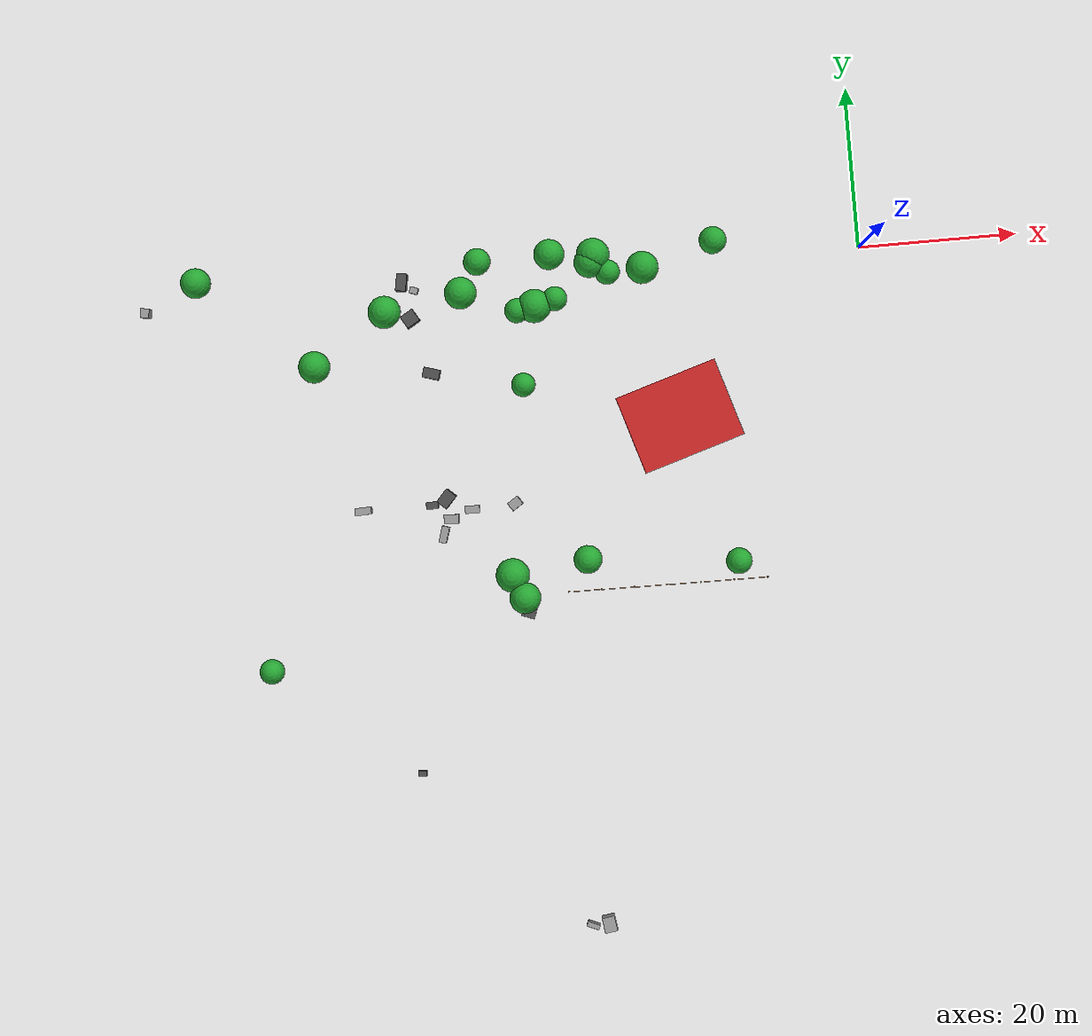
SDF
<sdf version="1.6">
 <world name="outdoor_v2">
  <include><uri>model://sun</uri></include>
  <model name="tree_7">
   <static>true</static>
   <pose>-81.61 0.89 6.46 0 0 2.130</pose>
   <link name="link">
    <collision name="trunk_c">
     <pose>0 0 1.5 0 0 0</pose>
     <geometry><cylinder><radius>0.22</radius><length>3.0</length></cylinder></geometry>
    </collision>
    <visual name="trunk_v">
     <pose>0 0 1.5 0 0 0</pose>
     <geometry><cylinder><radius>0.22</radius><length>3.0</length></cylinder></geometry>
     <material>
      <script><uri>file://media/materials/scripts/gazebo.material</uri><name>Gazebo/Wood</name></script>
     </material>
    </visual>
    <collision name="canopy_c">
     <pose>0 0 4.5 0 0 0</pose>
     <geometry><sphere><radius>1.81</radius></sphere></geometry>
    </collision>
    <visual name="canopy_v">
     <pose>0 0 4.5 0 0 0</pose>
     <geometry><sphere><radius>1.81</radius></sphere></geometry>
     <material>
      <script><uri>file://media/materials/scripts/gazebo.material</uri><name>Gazebo/Green</name></script>
     </material>
    </visual>
   </link>
  </model>
  <model name="tree_22">
   <static>true</static>
   <pose>-43.29 -5.84 8.67 0 0 0.361</pose>
   <link name="link">
    <collision name="trunk_c">
     <pose>0 0 1.5 0 0 0</pose>
     <geometry><cylinder><radius>0.22</radius><length>3.0</length></cylinder></geometry>
    </collision>
    <visual name="trunk_v">
     <pose>0 0 1.5 0 0 0</pose>
     <geometry><cylinder><radius>0.22</radius><length>3.0</length></cylinder></geometry>
     <material>
      <script><uri>file://media/materials/scripts/gazebo.material</uri><name>Gazebo/Wood</name></script>
     </material>
    </visual>
    <collision name="canopy_c">
     <pose>0 0 4.5 0 0 0</pose>
     <geometry><sphere><radius>1.47</radius></sphere></geometry>
    </collision>
    <visual name="canopy_v">
     <pose>0 0 4.5 0 0 0</pose>
     <geometry><sphere><radius>1.47</radius></sphere></geometry>
     <material>
      <script><uri>file://media/materials/scripts/gazebo.material</uri><name>Gazebo/Green</name></script>
     </material>
    </visual>
   </link>
  </model>
  <model name="tree_23">
   <static>true</static>
   <pose>-27.96 -1.86 7.77 0 0 2.671</pose>
   <link name="link">
    <collision name="trunk_c">
     <pose>0 0 1.5 0 0 0</pose>
     <geometry><cylinder><radius>0.22</radius><length>3.0</length></cylinder></geometry>
    </collision>
    <visual name="trunk_v">
     <pose>0 0 1.5 0 0 0</pose>
     <geometry><cylinder><radius>0.22</radius><length>3.0</length></cylinder></geometry>
     <material>
      <script><uri>file://media/materials/scripts/gazebo.material</uri><name>Gazebo/Wood</name></script>
     </material>
    </visual>
    <collision name="canopy_c">
     <pose>0 0 4.5 0 0 0</pose>
     <geometry><sphere><radius>1.95</radius></sphere></geometry>
    </collision>
    <visual name="canopy_v">
     <pose>0 0 4.5 0 0 0</pose>
     <geometry><sphere><radius>1.95</radius></sphere></geometry>
     <material>
      <script><uri>file://media/materials/scripts/gazebo.material</uri><name>Gazebo/Green</name></script>
     </material>
    </visual>
   </link>
  </model>
  <model name="tree_25">
   <static>true</static>
   <pose>-49.75 -3.32 9.65 0 0 5.034</pose>
   <link name="link">
    <collision name="trunk_c">
     <pose>0 0 1.5 0 0 0</pose>
     <geometry><cylinder><radius>0.22</radius><length>3.0</length></cylinder></geometry>
    </collision>
    <visual name="trunk_v">
     <pose>0 0 1.5 0 0 0</pose>
     <geometry><cylinder><radius>0.22</radius><length>3.0</length></cylinder></geometry>
     <material>
      <script><uri>file://media/materials/scripts/gazebo.material</uri><name>Gazebo/Wood</name></script>
     </material>
    </visual>
    <collision name="canopy_c">
     <pose>0 0 4.5 0 0 0</pose>
     <geometry><sphere><radius>1.91</radius></sphere></geometry>
    </collision>
    <visual name="canopy_v">
     <pose>0 0 4.5 0 0 0</pose>
     <geometry><sphere><radius>1.91</radius></sphere></geometry>
     <material>
      <script><uri>file://media/materials/scripts/gazebo.material</uri><name>Gazebo/Green</name></script>
     </material>
    </visual>
   </link>
  </model>
  <model name="tree_26">
   <static>true</static>
   <pose>-38.67 -4.79 8.54 0 0 5.377</pose>
   <link name="link">
    <collision name="trunk_c">
     <pose>0 0 1.5 0 0 0</pose>
     <geometry><cylinder><radius>0.22</radius><length>3.0</length></cylinder></geometry>
    </collision>
    <visual name="trunk_v">
     <pose>0 0 1.5 0 0 0</pose>
     <geometry><cylinder><radius>0.22</radius><length>3.0</length></cylinder></geometry>
     <material>
      <script><uri>file://media/materials/scripts/gazebo.material</uri><name>Gazebo/Wood</name></script>
     </material>
    </visual>
    <collision name="canopy_c">
     <pose>0 0 4.5 0 0 0</pose>
     <geometry><sphere><radius>1.47</radius></sphere></geometry>
    </collision>
    <visual name="canopy_v">
     <pose>0 0 4.5 0 0 0</pose>
     <geometry><sphere><radius>1.47</radius></sphere></geometry>
     <material>
      <script><uri>file://media/materials/scripts/gazebo.material</uri><name>Gazebo/Green</name></script>
     </material>
    </visual>
   </link>
  </model>
  <model name="tree_29">
   <static>true</static>
   <pose>-34.23 -0.82 8.59 0 0 5.819</pose>
   <link name="link">
    <collision name="trunk_c">
     <pose>0 0 1.5 0 0 0</pose>
     <geometry><cylinder><radius>0.22</radius><length>3.0</length></cylinder></geometry>
    </collision>
    <visual name="trunk_v">
     <pose>0 0 1.5 0 0 0</pose>
     <geometry><cylinder><radius>0.22</radius><length>3.0</length></cylinder></geometry>
     <material>
      <script><uri>file://media/materials/scripts/gazebo.material</uri><name>Gazebo/Wood</name></script>
     </material>
    </visual>
    <collision name="canopy_c">
     <pose>0 0 4.5 0 0 0</pose>
     <geometry><sphere><radius>1.84</radius></sphere></geometry>
    </collision>
    <visual name="canopy_v">
     <pose>0 0 4.5 0 0 0</pose>
     <geometry><sphere><radius>1.84</radius></sphere></geometry>
     <material>
      <script><uri>file://media/materials/scripts/gazebo.material</uri><name>Gazebo/Green</name></script>
     </material>
    </visual>
   </link>
  </model>
  <model name="tree_31">
   <static>true</static>
   <pose>-38.92 0.39 9.44 0 0 1.497</pose>
   <link name="link">
    <collision name="trunk_c">
     <pose>0 0 1.5 0 0 0</pose>
     <geometry><cylinder><radius>0.22</radius><length>3.0</length></cylinder></geometry>
    </collision>
    <visual name="trunk_v">
     <pose>0 0 1.5 0 0 0</pose>
     <geometry><cylinder><radius>0.22</radius><length>3.0</length></cylinder></geometry>
     <material>
      <script><uri>file://media/materials/scripts/gazebo.material</uri><name>Gazebo/Wood</name></script>
     </material>
    </visual>
    <collision name="canopy_c">
     <pose>0 0 4.5 0 0 0</pose>
     <geometry><sphere><radius>1.82</radius></sphere></geometry>
    </collision>
    <visual name="canopy_v">
     <pose>0 0 4.5 0 0 0</pose>
     <geometry><sphere><radius>1.82</radius></sphere></geometry>
     <material>
      <script><uri>file://media/materials/scripts/gazebo.material</uri><name>Gazebo/Green</name></script>
     </material>
    </visual>
   </link>
  </model>
  <model name="tree_32">
   <static>true</static>
   <pose>-32.18 -2.10 8.21 0 0 1.014</pose>
   <link name="link">
    <collision name="trunk_c">
     <pose>0 0 1.5 0 0 0</pose>
     <geometry><cylinder><radius>0.22</radius><length>3.0</length></cylinder></geometry>
    </collision>
    <visual name="trunk_v">
     <pose>0 0 1.5 0 0 0</pose>
     <geometry><cylinder><radius>0.22</radius><length>3.0</length></cylinder></geometry>
     <material>
      <script><uri>file://media/materials/scripts/gazebo.material</uri><name>Gazebo/Wood</name></script>
     </material>
    </visual>
    <collision name="canopy_c">
     <pose>0 0 4.5 0 0 0</pose>
     <geometry><sphere><radius>1.49</radius></sphere></geometry>
    </collision>
    <visual name="canopy_v">
     <pose>0 0 4.5 0 0 0</pose>
     <geometry><sphere><radius>1.49</radius></sphere></geometry>
     <material>
      <script><uri>file://media/materials/scripts/gazebo.material</uri><name>Gazebo/Green</name></script>
     </material>
    </visual>
   </link>
  </model>
  <model name="tree_34">
   <static>true</static>
   <pose>-19.24 0.82 6.90 0 0 1.915</pose>
   <link name="link">
    <collision name="trunk_c">
     <pose>0 0 1.5 0 0 0</pose>
     <geometry><cylinder><radius>0.22</radius><length>3.0</length></cylinder></geometry>
    </collision>
    <visual name="trunk_v">
     <pose>0 0 1.5 0 0 0</pose>
     <geometry><cylinder><radius>0.22</radius><length>3.0</length></cylinder></geometry>
     <material>
      <script><uri>file://media/materials/scripts/gazebo.material</uri><name>Gazebo/Wood</name></script>
     </material>
    </visual>
    <collision name="canopy_c">
     <pose>0 0 4.5 0 0 0</pose>
     <geometry><sphere><radius>1.65</radius></sphere></geometry>
    </collision>
    <visual name="canopy_v">
     <pose>0 0 4.5 0 0 0</pose>
     <geometry><sphere><radius>1.65</radius></sphere></geometry>
     <material>
      <script><uri>file://media/materials/scripts/gazebo.material</uri><name>Gazebo/Green</name></script>
     </material>
    </visual>
   </link>
  </model>
  <model name="tree_35">
   <static>true</static>
   <pose>-41.18 -5.46 8.61 0 0 1.821</pose>
   <link name="link">
    <collision name="trunk_c">
     <pose>0 0 1.5 0 0 0</pose>
     <geometry><cylinder><radius>0.22</radius><length>3.0</length></cylinder></geometry>
    </collision>
    <visual name="trunk_v">
     <pose>0 0 1.5 0 0 0</pose>
     <geometry><cylinder><radius>0.22</radius><length>3.0</length></cylinder></geometry>
     <material>
      <script><uri>file://media/materials/scripts/gazebo.material</uri><name>Gazebo/Wood</name></script>
     </material>
    </visual>
    <collision name="canopy_c">
     <pose>0 0 4.5 0 0 0</pose>
     <geometry><sphere><radius>2.01</radius></sphere></geometry>
    </collision>
    <visual name="canopy_v">
     <pose>0 0 4.5 0 0 0</pose>
     <geometry><sphere><radius>2.01</radius></sphere></geometry>
     <material>
      <script><uri>file://media/materials/scripts/gazebo.material</uri><name>Gazebo/Green</name></script>
     </material>
    </visual>
   </link>
  </model>
  <model name="tree_38">
   <static>true</static>
   <pose>-47.45 0.09 10.42 0 0 0.096</pose>
   <link name="link">
    <collision name="trunk_c">
     <pose>0 0 1.5 0 0 0</pose>
     <geometry><cylinder><radius>0.22</radius><length>3.0</length></cylinder></geometry>
    </collision>
    <visual name="trunk_v">
     <pose>0 0 1.5 0 0 0</pose>
     <geometry><cylinder><radius>0.22</radius><length>3.0</length></cylinder></geometry>
     <material>
      <script><uri>file://media/materials/scripts/gazebo.material</uri><name>Gazebo/Wood</name></script>
     </material>
    </visual>
    <collision name="canopy_c">
     <pose>0 0 4.5 0 0 0</pose>
     <geometry><sphere><radius>1.60</radius></sphere></geometry>
    </collision>
    <visual name="canopy_v">
     <pose>0 0 4.5 0 0 0</pose>
     <geometry><sphere><radius>1.60</radius></sphere></geometry>
     <material>
      <script><uri>file://media/materials/scripts/gazebo.material</uri><name>Gazebo/Green</name></script>
     </material>
    </visual>
   </link>
  </model>
  <model name="tree_39">
   <static>true</static>
   <pose>-33.75 0.04 8.61 0 0 3.461</pose>
   <link name="link">
    <collision name="trunk_c">
     <pose>0 0 1.5 0 0 0</pose>
     <geometry><cylinder><radius>0.22</radius><length>3.0</length></cylinder></geometry>
    </collision>
    <visual name="trunk_v">
     <pose>0 0 1.5 0 0 0</pose>
     <geometry><cylinder><radius>0.22</radius><length>3.0</length></cylinder></geometry>
     <material>
      <script><uri>file://media/materials/scripts/gazebo.material</uri><name>Gazebo/Wood</name></script>
     </material>
    </visual>
    <collision name="canopy_c">
     <pose>0 0 4.5 0 0 0</pose>
     <geometry><sphere><radius>1.99</radius></sphere></geometry>
    </collision>
    <visual name="canopy_v">
     <pose>0 0 4.5 0 0 0</pose>
     <geometry><sphere><radius>1.99</radius></sphere></geometry>
     <material>
      <script><uri>file://media/materials/scripts/gazebo.material</uri><name>Gazebo/Green</name></script>
     </material>
    </visual>
   </link>
  </model>
  <model name="tree_40">
   <static>true</static>
   <pose>-19.49 -37.63 9.95 0 0 2.981</pose>
   <link name="link">
    <collision name="trunk_c">
     <pose>0 0 1.5 0 0 0</pose>
     <geometry><cylinder><radius>0.22</radius><length>3.0</length></cylinder></geometry>
    </collision>
    <visual name="trunk_v">
     <pose>0 0 1.5 0 0 0</pose>
     <geometry><cylinder><radius>0.22</radius><length>3.0</length></cylinder></geometry>
     <material>
      <script><uri>file://media/materials/scripts/gazebo.material</uri><name>Gazebo/Wood</name></script>
     </material>
    </visual>
    <collision name="canopy_c">
     <pose>0 0 4.5 0 0 0</pose>
     <geometry><sphere><radius>1.55</radius></sphere></geometry>
    </collision>
    <visual name="canopy_v">
     <pose>0 0 4.5 0 0 0</pose>
     <geometry><sphere><radius>1.55</radius></sphere></geometry>
     <material>
      <script><uri>file://media/materials/scripts/gazebo.material</uri><name>Gazebo/Green</name></script>
     </material>
    </visual>
   </link>
  </model>
  <model name="tree_42">
   <static>true</static>
   <pose>-46.58 -37.32 5.39 0 0 2.714</pose>
   <link name="link">
    <collision name="trunk_c">
     <pose>0 0 1.5 0 0 0</pose>
     <geometry><cylinder><radius>0.22</radius><length>3.0</length></cylinder></geometry>
    </collision>
    <visual name="trunk_v">
     <pose>0 0 1.5 0 0 0</pose>
     <geometry><cylinder><radius>0.22</radius><length>3.0</length></cylinder></geometry>
     <material>
      <script><uri>file://media/materials/scripts/gazebo.material</uri><name>Gazebo/Wood</name></script>
     </material>
    </visual>
    <collision name="canopy_c">
     <pose>0 0 4.5 0 0 0</pose>
     <geometry><sphere><radius>2.06</radius></sphere></geometry>
    </collision>
    <visual name="canopy_v">
     <pose>0 0 4.5 0 0 0</pose>
     <geometry><sphere><radius>2.06</radius></sphere></geometry>
     <material>
      <script><uri>file://media/materials/scripts/gazebo.material</uri><name>Gazebo/Green</name></script>
     </material>
    </visual>
   </link>
  </model>
  <model name="tree_44">
   <static>true</static>
   <pose>-37.34 -36.11 6.84 0 0 3.182</pose>
   <link name="link">
    <collision name="trunk_c">
     <pose>0 0 1.5 0 0 0</pose>
     <geometry><cylinder><radius>0.22</radius><length>3.0</length></cylinder></geometry>
    </collision>
    <visual name="trunk_v">
     <pose>0 0 1.5 0 0 0</pose>
     <geometry><cylinder><radius>0.22</radius><length>3.0</length></cylinder></geometry>
     <material>
      <script><uri>file://media/materials/scripts/gazebo.material</uri><name>Gazebo/Wood</name></script>
     </material>
    </visual>
    <collision name="canopy_c">
     <pose>0 0 4.5 0 0 0</pose>
     <geometry><sphere><radius>1.71</radius></sphere></geometry>
    </collision>
    <visual name="canopy_v">
     <pose>0 0 4.5 0 0 0</pose>
     <geometry><sphere><radius>1.71</radius></sphere></geometry>
     <material>
      <script><uri>file://media/materials/scripts/gazebo.material</uri><name>Gazebo/Green</name></script>
     </material>
    </visual>
   </link>
  </model>
  <model name="tree_74">
   <static>true</static>
   <pose>-43.31 -14.58 6.93 0 0 5.246</pose>
   <link name="link">
    <collision name="trunk_c">
     <pose>0 0 1.5 0 0 0</pose>
     <geometry><cylinder><radius>0.22</radius><length>3.0</length></cylinder></geometry>
    </collision>
    <visual name="trunk_v">
     <pose>0 0 1.5 0 0 0</pose>
     <geometry><cylinder><radius>0.22</radius><length>3.0</length></cylinder></geometry>
     <material>
      <script><uri>file://media/materials/scripts/gazebo.material</uri><name>Gazebo/Wood</name></script>
     </material>
    </visual>
    <collision name="canopy_c">
     <pose>0 0 4.5 0 0 0</pose>
     <geometry><sphere><radius>1.44</radius></sphere></geometry>
    </collision>
    <visual name="canopy_v">
     <pose>0 0 4.5 0 0 0</pose>
     <geometry><sphere><radius>1.44</radius></sphere></geometry>
     <material>
      <script><uri>file://media/materials/scripts/gazebo.material</uri><name>Gazebo/Green</name></script>
     </material>
    </visual>
   </link>
  </model>
  <model name="tree_81">
   <static>true</static>
   <pose>-58.98 -4.77 9.12 0 0 4.354</pose>
   <link name="link">
    <collision name="trunk_c">
     <pose>0 0 1.5 0 0 0</pose>
     <geometry><cylinder><radius>0.22</radius><length>3.0</length></cylinder></geometry>
    </collision>
    <visual name="trunk_v">
     <pose>0 0 1.5 0 0 0</pose>
     <geometry><cylinder><radius>0.22</radius><length>3.0</length></cylinder></geometry>
     <material>
      <script><uri>file://media/materials/scripts/gazebo.material</uri><name>Gazebo/Wood</name></script>
     </material>
    </visual>
    <collision name="canopy_c">
     <pose>0 0 4.5 0 0 0</pose>
     <geometry><sphere><radius>1.95</radius></sphere></geometry>
    </collision>
    <visual name="canopy_v">
     <pose>0 0 4.5 0 0 0</pose>
     <geometry><sphere><radius>1.95</radius></sphere></geometry>
     <material>
      <script><uri>file://media/materials/scripts/gazebo.material</uri><name>Gazebo/Green</name></script>
     </material>
    </visual>
   </link>
  </model>
  <model name="tree_86">
   <static>true</static>
   <pose>-45.27 -40.15 5.88 0 0 4.275</pose>
   <link name="link">
    <collision name="trunk_c">
     <pose>0 0 1.5 0 0 0</pose>
     <geometry><cylinder><radius>0.22</radius><length>3.0</length></cylinder></geometry>
    </collision>
    <visual name="trunk_v">
     <pose>0 0 1.5 0 0 0</pose>
     <geometry><cylinder><radius>0.22</radius><length>3.0</length></cylinder></geometry>
     <material>
      <script><uri>file://media/materials/scripts/gazebo.material</uri><name>Gazebo/Wood</name></script>
     </material>
    </visual>
    <collision name="canopy_c">
     <pose>0 0 4.5 0 0 0</pose>
     <geometry><sphere><radius>1.90</radius></sphere></geometry>
    </collision>
    <visual name="canopy_v">
     <pose>0 0 4.5 0 0 0</pose>
     <geometry><sphere><radius>1.90</radius></sphere></geometry>
     <material>
      <script><uri>file://media/materials/scripts/gazebo.material</uri><name>Gazebo/Green</name></script>
     </material>
    </visual>
   </link>
  </model>
  <model name="tree_98">
   <static>true</static>
   <pose>-68.11 -10.42 7.26 0 0 0.487</pose>
   <link name="link">
    <collision name="trunk_c">
     <pose>0 0 1.5 0 0 0</pose>
     <geometry><cylinder><radius>0.22</radius><length>3.0</length></cylinder></geometry>
    </collision>
    <visual name="trunk_v">
     <pose>0 0 1.5 0 0 0</pose>
     <geometry><cylinder><radius>0.22</radius><length>3.0</length></cylinder></geometry>
     <material>
      <script><uri>file://media/materials/scripts/gazebo.material</uri><name>Gazebo/Wood</name></script>
     </material>
    </visual>
    <collision name="canopy_c">
     <pose>0 0 4.5 0 0 0</pose>
     <geometry><sphere><radius>1.91</radius></sphere></geometry>
    </collision>
    <visual name="canopy_v">
     <pose>0 0 4.5 0 0 0</pose>
     <geometry><sphere><radius>1.91</radius></sphere></geometry>
     <material>
      <script><uri>file://media/materials/scripts/gazebo.material</uri><name>Gazebo/Green</name></script>
     </material>
    </visual>
   </link>
  </model>
  <model name="tree_99">
   <static>true</static>
   <pose>-76.94 -46.69 3.31 0 0 1.595</pose>
   <link name="link">
    <collision name="trunk_c">
     <pose>0 0 1.5 0 0 0</pose>
     <geometry><cylinder><radius>0.22</radius><length>3.0</length></cylinder></geometry>
    </collision>
    <visual name="trunk_v">
     <pose>0 0 1.5 0 0 0</pose>
     <geometry><cylinder><radius>0.22</radius><length>3.0</length></cylinder></geometry>
     <material>
      <script><uri>file://media/materials/scripts/gazebo.material</uri><name>Gazebo/Wood</name></script>
     </material>
    </visual>
    <collision name="canopy_c">
     <pose>0 0 4.5 0 0 0</pose>
     <geometry><sphere><radius>1.52</radius></sphere></geometry>
    </collision>
    <visual name="canopy_v">
     <pose>0 0 4.5 0 0 0</pose>
     <geometry><sphere><radius>1.52</radius></sphere></geometry>
     <material>
      <script><uri>file://media/materials/scripts/gazebo.material</uri><name>Gazebo/Green</name></script>
     </material>
    </visual>
   </link>
  </model>
  <model name="rock_0">
   <static>true</static>
   <pose>-54.89 -31.81 4.64 0 0 2.845</pose>
   <link name="link">
    <collision name="rock_c"><geometry><box><size>0.93 2.05 1.05</size></box></geometry></collision>
    <visual name="rock_v">
     <geometry><box><size>0.93 2.05 1.05</size></box></geometry>
     <material>
      <script><uri>file://media/materials/scripts/gazebo.material</uri><name>Gazebo/Grey</name></script>
     </material>
    </visual>
   </link>
  </model>
  <model name="rock_1">
   <static>true</static>
   <pose>-53.84 -29.97 4.74 0 0 1.533</pose>
   <link name="link">
    <collision name="rock_c"><geometry><box><size>1.13 1.81 0.97</size></box></geometry></collision>
    <visual name="rock_v">
     <geometry><box><size>1.13 1.81 0.97</size></box></geometry>
     <material>
      <script><uri>file://media/materials/scripts/gazebo.material</uri><name>Gazebo/Grey</name></script>
     </material>
    </visual>
   </link>
  </model>
  <model name="rock_2">
   <static>true</static>
   <pose>-56.06 -28.10 4.63 0 0 1.622</pose>
   <link name="link">
    <collision name="rock_c"><geometry><box><size>0.88 1.49 0.85</size></box></geometry></collision>
    <visual name="rock_v">
     <geometry><box><size>0.88 1.49 0.85</size></box></geometry>
     <material>
      <script><uri>file://media/materials/scripts/gazebo.material</uri><name>Gazebo/DarkGrey</name></script>
     </material>
    </visual>
   </link>
  </model>
  <model name="rock_3">
   <static>true</static>
   <pose>-54.19 -27.43 5.03 0 0 2.404</pose>
   <link name="link">
    <collision name="rock_c"><geometry><box><size>1.51 2.02 1.32</size></box></geometry></collision>
    <visual name="rock_v">
     <geometry><box><size>1.51 2.02 1.32</size></box></geometry>
     <material>
      <script><uri>file://media/materials/scripts/gazebo.material</uri><name>Gazebo/DarkGrey</name></script>
     </material>
    </visual>
   </link>
  </model>
  <model name="rock_4">
   <static>true</static>
   <pose>-51.15 -28.99 4.92 0 0 3.128</pose>
   <link name="link">
    <collision name="rock_c"><geometry><box><size>1.79 0.94 0.80</size></box></geometry></collision>
    <visual name="rock_v">
     <geometry><box><size>1.79 0.94 0.80</size></box></geometry>
     <material>
      <script><uri>file://media/materials/scripts/gazebo.material</uri><name>Gazebo/Grey</name></script>
     </material>
    </visual>
   </link>
  </model>
  <model name="rock_5">
   <static>true</static>
   <pose>-45.75 -28.71 5.72 0 0 0.582</pose>
   <link name="link">
    <collision name="rock_c"><geometry><box><size>1.52 1.18 1.26</size></box></geometry></collision>
    <visual name="rock_v">
     <geometry><box><size>1.52 1.18 1.26</size></box></geometry>
     <material>
      <script><uri>file://media/materials/scripts/gazebo.material</uri><name>Gazebo/Grey</name></script>
     </material>
    </visual>
   </link>
  </model>
  <model name="rock_6">
   <static>true</static>
   <pose>-54.55 -12.05 7.61 0 0 5.991</pose>
   <link name="link">
    <collision name="rock_c"><geometry><box><size>2.03 1.22 1.21</size></box></geometry></collision>
    <visual name="rock_v">
     <geometry><box><size>2.03 1.22 1.21</size></box></geometry>
     <material>
      <script><uri>file://media/materials/scripts/gazebo.material</uri><name>Gazebo/DarkGrey</name></script>
     </material>
    </visual>
   </link>
  </model>
  <model name="rock_7">
   <static>true</static>
   <pose>-60.15 -4.18 9.28 0 0 2.670</pose>
   <link name="link">
    <collision name="rock_c"><geometry><box><size>1.96 2.00 0.52</size></box></geometry></collision>
    <visual name="rock_v">
     <geometry><box><size>1.96 2.00 0.52</size></box></geometry>
     <material>
      <script><uri>file://media/materials/scripts/gazebo.material</uri><name>Gazebo/Grey</name></script>
     </material>
    </visual>
   </link>
  </model>
  <model name="rock_9">
   <static>true</static>
   <pose>-56.93 -1.08 10.78 0 0 6.106</pose>
   <link name="link">
    <collision name="rock_c"><geometry><box><size>1.23 2.08 1.41</size></box></geometry></collision>
    <visual name="rock_v">
     <geometry><box><size>1.23 2.08 1.41</size></box></geometry>
     <material>
      <script><uri>file://media/materials/scripts/gazebo.material</uri><name>Gazebo/DarkGrey</name></script>
     </material>
    </visual>
   </link>
  </model>
  <model name="rock_10">
   <static>true</static>
   <pose>-55.60 -2.08 10.17 0 0 5.913</pose>
   <link name="link">
    <collision name="rock_c"><geometry><box><size>1.00 0.77 0.67</size></box></geometry></collision>
    <visual name="rock_v">
     <geometry><box><size>1.00 0.77 0.67</size></box></geometry>
     <material>
      <script><uri>file://media/materials/scripts/gazebo.material</uri><name>Gazebo/Grey</name></script>
     </material>
    </visual>
   </link>
  </model>
  <model name="rock_11">
   <static>true</static>
   <pose>-56.37 -5.39 9.52 0 0 0.534</pose>
   <link name="link">
    <collision name="rock_c"><geometry><box><size>1.75 1.64 1.34</size></box></geometry></collision>
    <visual name="rock_v">
     <geometry><box><size>1.75 1.64 1.34</size></box></geometry>
     <material>
      <script><uri>file://media/materials/scripts/gazebo.material</uri><name>Gazebo/DarkGrey</name></script>
     </material>
    </visual>
   </link>
  </model>
  <model name="rock_16">
   <static>true</static>
   <pose>-89.35 -1.49 5.13 0 0 2.985</pose>
   <link name="link">
    <collision name="rock_c"><geometry><box><size>1.05 1.11 1.42</size></box></geometry></collision>
    <visual name="rock_v">
     <geometry><box><size>1.05 1.11 1.42</size></box></geometry>
     <material>
      <script><uri>file://media/materials/scripts/gazebo.material</uri><name>Gazebo/Grey</name></script>
     </material>
    </visual>
   </link>
  </model>
  <model name="rock_18">
   <static>true</static>
   <pose>-64.67 -28.09 4.45 0 0 1.616</pose>
   <link name="link">
    <collision name="rock_c"><geometry><box><size>0.91 2.02 1.21</size></box></geometry></collision>
    <visual name="rock_v">
     <geometry><box><size>0.91 2.02 1.21</size></box></geometry>
     <material>
      <script><uri>file://media/materials/scripts/gazebo.material</uri><name>Gazebo/Grey</name></script>
     </material>
    </visual>
   </link>
  </model>
  <model name="rock_25">
   <static>true</static>
   <pose>-40.47 -81.31 5.57 0 0 1.156</pose>
   <link name="link">
    <collision name="rock_c"><geometry><box><size>0.64 1.55 0.96</size></box></geometry></collision>
    <visual name="rock_v">
     <geometry><box><size>0.64 1.55 0.96</size></box></geometry>
     <material>
      <script><uri>file://media/materials/scripts/gazebo.material</uri><name>Gazebo/Grey</name></script>
     </material>
    </visual>
   </link>
  </model>
  <model name="rock_28">
   <static>true</static>
   <pose>-45.12 -42.17 6.42 0 0 2.778</pose>
   <link name="link">
    <collision name="rock_c"><geometry><box><size>1.66 1.21 0.91</size></box></geometry></collision>
    <visual name="rock_v">
     <geometry><box><size>1.66 1.21 0.91</size></box></geometry>
     <material>
      <script><uri>file://media/materials/scripts/gazebo.material</uri><name>Gazebo/DarkGrey</name></script>
     </material>
    </visual>
   </link>
  </model>
  <model name="rock_37">
   <static>true</static>
   <pose>-38.48 -81.18 5.96 0 0 0.152</pose>
   <link name="link">
    <collision name="rock_c"><geometry><box><size>1.55 1.89 1.54</size></box></geometry></collision>
    <visual name="rock_v">
     <geometry><box><size>1.55 1.89 1.54</size></box></geometry>
     <material>
      <script><uri>file://media/materials/scripts/gazebo.material</uri><name>Gazebo/Grey</name></script>
     </material>
    </visual>
   </link>
  </model>
  <model name="rock_44">
   <static>true</static>
   <pose>-59.88 -60.90 5.81 0 0 6.207</pose>
   <link name="link">
    <collision name="rock_c"><geometry><box><size>1.02 0.73 0.61</size></box></geometry></collision>
    <visual name="rock_v">
     <geometry><box><size>1.02 0.73 0.61</size></box></geometry>
     <material>
      <script><uri>file://media/materials/scripts/gazebo.material</uri><name>Gazebo/DarkGrey</name></script>
     </material>
    </visual>
   </link>
  </model>
  <model name="house">
   <static>true</static>
   <pose>-25.00 -20.00 8.23 0 0 0.300</pose>
   <link name="link">
    <collision name="body_c">
     <pose>0 0 2.5 0 0 0</pose>
     <geometry><box><size>12 9 5</size></box></geometry>
    </collision>
    <visual name="body_v">
     <pose>0 0 2.5 0 0 0</pose>
     <geometry><box><size>12 9 5</size></box></geometry>
     <material>
      <script><uri>file://media/materials/scripts/gazebo.material</uri><name>Gazebo/Grey</name></script>
     </material>
    </visual>
    <collision name="roof_c">
     <pose>0 0 5.25 0 0 0</pose>
     <geometry><box><size>12.6 9.6 0.5</size></box></geometry>
    </collision>
    <visual name="roof_v">
     <pose>0 0 5.25 0 0 0</pose>
     <geometry><box><size>12.6 9.6 0.5</size></box></geometry>
     <material>
      <script><uri>file://media/materials/scripts/gazebo.material</uri><name>Gazebo/Red</name></script>
     </material>
    </visual>
    <collision name="door_c">
     <pose>0 -4.55 1.1 0 0 0</pose>
     <geometry><box><size>1.2 0.1 2.2</size></box></geometry>
    </collision>
    <visual name="door_v">
     <pose>0 -4.55 1.1 0 0 0</pose>
     <geometry><box><size>1.2 0.1 2.2</size></box></geometry>
     <material>
      <script><uri>file://media/materials/scripts/gazebo.material</uri><name>Gazebo/DarkGrey</name></script>
     </material>
    </visual>
   </link>
  </model>
  <model name="post_0">
   <static>true</static>
   <pose>-40.00 -40.00 6.81 0 0 0.000</pose>
   <link name="link">
    <collision name="post_c">
     <pose>0 0 0.7 0 0 0</pose>
     <geometry><box><size>0.12 0.12 1.4</size></box></geometry>
    </collision>
    <visual name="post_v">
     <pose>0 0 0.7 0 0 0</pose>
     <geometry><box><size>0.12 0.12 1.4</size></box></geometry>
     <material>
      <script><uri>file://media/materials/scripts/gazebo.material</uri><name>Gazebo/Wood</name></script>
     </material>
    </visual>
   </link>
  </model>
  <model name="rail_0">
   <static>true</static>
   <pose>-38.00 -40.00 7.19 0 0 0.000</pose>
   <link name="link">
    <collision name="rail_c">
     <pose>0 0 1.1 0 0 0</pose>
     <geometry><box><size>4.0 0.06 0.06</size></box></geometry>
    </collision>
    <visual name="rail_v">
     <pose>0 0 1.1 0 0 0</pose>
     <geometry><box><size>4.0 0.06 0.06</size></box></geometry>
     <material>
      <script><uri>file://media/materials/scripts/gazebo.material</uri><name>Gazebo/Wood</name></script>
     </material>
    </visual>
   </link>
  </model>
  <model name="post_1">
   <static>true</static>
   <pose>-36.00 -40.00 7.57 0 0 0.000</pose>
   <link name="link">
    <collision name="post_c">
     <pose>0 0 0.7 0 0 0</pose>
     <geometry><box><size>0.12 0.12 1.4</size></box></geometry>
    </collision>
    <visual name="post_v">
     <pose>0 0 0.7 0 0 0</pose>
     <geometry><box><size>0.12 0.12 1.4</size></box></geometry>
     <material>
      <script><uri>file://media/materials/scripts/gazebo.material</uri><name>Gazebo/Wood</name></script>
     </material>
    </visual>
   </link>
  </model>
  <model name="rail_1">
   <static>true</static>
   <pose>-34.00 -40.00 7.94 0 0 0.000</pose>
   <link name="link">
    <collision name="rail_c">
     <pose>0 0 1.1 0 0 0</pose>
     <geometry><box><size>4.0 0.06 0.06</size></box></geometry>
    </collision>
    <visual name="rail_v">
     <pose>0 0 1.1 0 0 0</pose>
     <geometry><box><size>4.0 0.06 0.06</size></box></geometry>
     <material>
      <script><uri>file://media/materials/scripts/gazebo.material</uri><name>Gazebo/Wood</name></script>
     </material>
    </visual>
   </link>
  </model>
  <model name="post_2">
   <static>true</static>
   <pose>-32.00 -40.00 8.29 0 0 0.000</pose>
   <link name="link">
    <collision name="post_c">
     <pose>0 0 0.7 0 0 0</pose>
     <geometry><box><size>0.12 0.12 1.4</size></box></geometry>
    </collision>
    <visual name="post_v">
     <pose>0 0 0.7 0 0 0</pose>
     <geometry><box><size>0.12 0.12 1.4</size></box></geometry>
     <material>
      <script><uri>file://media/materials/scripts/gazebo.material</uri><name>Gazebo/Wood</name></script>
     </material>
    </visual>
   </link>
  </model>
  <model name="rail_2">
   <static>true</static>
   <pose>-30.00 -40.00 8.63 0 0 0.000</pose>
   <link name="link">
    <collision name="rail_c">
     <pose>0 0 1.1 0 0 0</pose>
     <geometry><box><size>4.0 0.06 0.06</size></box></geometry>
    </collision>
    <visual name="rail_v">
     <pose>0 0 1.1 0 0 0</pose>
     <geometry><box><size>4.0 0.06 0.06</size></box></geometry>
     <material>
      <script><uri>file://media/materials/scripts/gazebo.material</uri><name>Gazebo/Wood</name></script>
     </material>
    </visual>
   </link>
  </model>
  <model name="post_3">
   <static>true</static>
   <pose>-28.00 -40.00 8.94 0 0 0.000</pose>
   <link name="link">
    <collision name="post_c">
     <pose>0 0 0.7 0 0 0</pose>
     <geometry><box><size>0.12 0.12 1.4</size></box></geometry>
    </collision>
    <visual name="post_v">
     <pose>0 0 0.7 0 0 0</pose>
     <geometry><box><size>0.12 0.12 1.4</size></box></geometry>
     <material>
      <script><uri>file://media/materials/scripts/gazebo.material</uri><name>Gazebo/Wood</name></script>
     </material>
    </visual>
   </link>
  </model>
  <model name="rail_3">
   <static>true</static>
   <pose>-26.00 -40.00 9.23 0 0 0.000</pose>
   <link name="link">
    <collision name="rail_c">
     <pose>0 0 1.1 0 0 0</pose>
     <geometry><box><size>4.0 0.06 0.06</size></box></geometry>
    </collision>
    <visual name="rail_v">
     <pose>0 0 1.1 0 0 0</pose>
     <geometry><box><size>4.0 0.06 0.06</size></box></geometry>
     <material>
      <script><uri>file://media/materials/scripts/gazebo.material</uri><name>Gazebo/Wood</name></script>
     </material>
    </visual>
   </link>
  </model>
  <model name="post_4">
   <static>true</static>
   <pose>-24.00 -40.00 9.49 0 0 0.000</pose>
   <link name="link">
    <collision name="post_c">
     <pose>0 0 0.7 0 0 0</pose>
     <geometry><box><size>0.12 0.12 1.4</size></box></geometry>
    </collision>
    <visual name="post_v">
     <pose>0 0 0.7 0 0 0</pose>
     <geometry><box><size>0.12 0.12 1.4</size></box></geometry>
     <material>
      <script><uri>file://media/materials/scripts/gazebo.material</uri><name>Gazebo/Wood</name></script>
     </material>
    </visual>
   </link>
  </model>
  <model name="rail_4">
   <static>true</static>
   <pose>-22.00 -40.00 9.73 0 0 0.000</pose>
   <link name="link">
    <collision name="rail_c">
     <pose>0 0 1.1 0 0 0</pose>
     <geometry><box><size>4.0 0.06 0.06</size></box></geometry>
    </collision>
    <visual name="rail_v">
     <pose>0 0 1.1 0 0 0</pose>
     <geometry><box><size>4.0 0.06 0.06</size></box></geometry>
     <material>
      <script><uri>file://media/materials/scripts/gazebo.material</uri><name>Gazebo/Wood</name></script>
     </material>
    </visual>
   </link>
  </model>
  <model name="post_5">
   <static>true</static>
   <pose>-20.00 -40.00 9.95 0 0 0.000</pose>
   <link name="link">
    <collision name="post_c">
     <pose>0 0 0.7 0 0 0</pose>
     <geometry><box><size>0.12 0.12 1.4</size></box></geometry>
    </collision>
    <visual name="post_v">
     <pose>0 0 0.7 0 0 0</pose>
     <geometry><box><size>0.12 0.12 1.4</size></box></geometry>
     <material>
      <script><uri>file://media/materials/scripts/gazebo.material</uri><name>Gazebo/Wood</name></script>
     </material>
    </visual>
   </link>
  </model>
  <model name="rail_5">
   <static>true</static>
   <pose>-18.00 -40.00 10.14 0 0 0.000</pose>
   <link name="link">
    <collision name="rail_c">
     <pose>0 0 1.1 0 0 0</pose>
     <geometry><box><size>4.0 0.06 0.06</size></box></geometry>
    </collision>
    <visual name="rail_v">
     <pose>0 0 1.1 0 0 0</pose>
     <geometry><box><size>4.0 0.06 0.06</size></box></geometry>
     <material>
      <script><uri>file://media/materials/scripts/gazebo.material</uri><name>Gazebo/Wood</name></script>
     </material>
    </visual>
   </link>
  </model>
  <model name="post_6">
   <static>true</static>
   <pose>-16.00 -40.00 10.32 0 0 0.000</pose>
   <link name="link">
    <collision name="post_c">
     <pose>0 0 0.7 0 0 0</pose>
     <geometry><box><size>0.12 0.12 1.4</size></box></geometry>
    </collision>
    <visual name="post_v">
     <pose>0 0 0.7 0 0 0</pose>
     <geometry><box><size>0.12 0.12 1.4</size></box></geometry>
     <material>
      <script><uri>file://media/materials/scripts/gazebo.material</uri><name>Gazebo/Wood</name></script>
     </material>
    </visual>
   </link>
  </model>
 </world>
</sdf>
